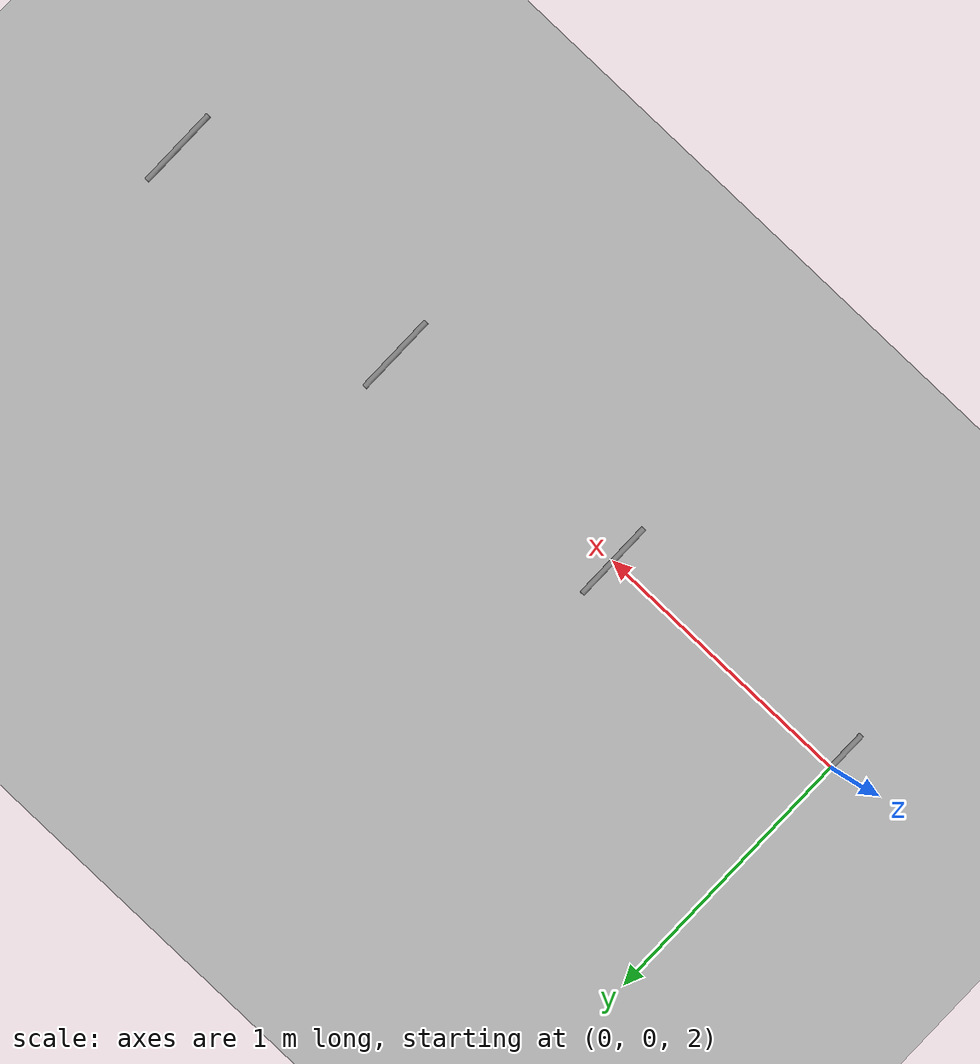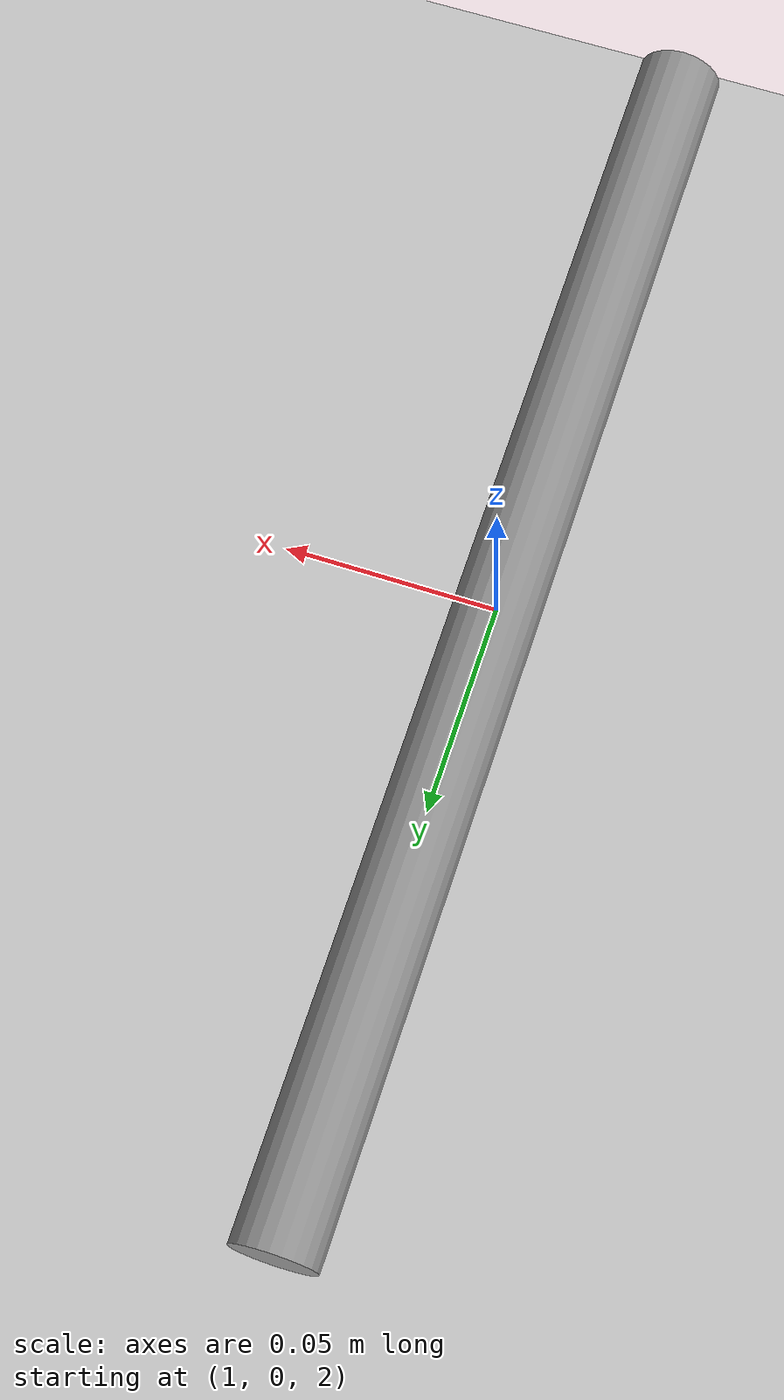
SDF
<?xml version='1.0'?>
<sdf version='1.7'>
  <world name="gibbon_world">
      <include>
        <uri>model://ground_plane</uri>
      </include>
      <include>
        <uri>model://sun</uri>
      </include>
    <model name='ladder'>
      <link name='link_0'>
        <inertial>
          <mass>1</mass>
          <inertia>
            <ixx>0.145833</ixx>
            <ixy>0</ixy>
            <ixz>0</ixz>
            <iyy>0.145833</iyy>
            <iyz>0</iyz>
            <izz>0.125</izz>
          </inertia>
        </inertial>
        <pose>0 0 2 1.57 -0 0</pose>
        <gravity>0</gravity>
        <self_collide>0</self_collide>
        <kinematic>0</kinematic>
        <enable_wind>0</enable_wind>
        <visual name='visual'>
          <geometry>
            <cylinder>
              <radius>0.01</radius>
              <length>0.3</length>
            </cylinder>
          </geometry>
          <material>
            <lighting>1</lighting>
            <script>
              <uri>file://media/materials/scripts/gazebo.material</uri>
              <name>Gazebo/Grey</name>
            </script>
            <shader type='pixel'>
              <normal_map>__default__</normal_map>
            </shader>
            <ambient>0.3 0.3 0.3 1</ambient>
            <diffuse>0.7 0.7 0.7 1</diffuse>
            <specular>0.01 0.01 0.01 1</specular>
            <emissive>0 0 0 1</emissive>
          </material>
          <transparency>0</transparency>
          <cast_shadows>1</cast_shadows>
        </visual>
        <collision name='collision'>
          <laser_retro>0</laser_retro>
          <max_contacts>10</max_contacts>
          <pose>0 0 0 0 -0 0</pose>
          <geometry>
            <cylinder>
              <radius>0.01</radius>
              <length>0.3</length>
            </cylinder>
          </geometry>
          <surface>
            <friction>
              <ode>
                <mu>0.001</mu>
                <mu2>0.001</mu2>
                <fdir1>0 0 0</fdir1>
                <slip1>0</slip1>
                <slip2>0</slip2>
              </ode>
              <torsional>
                <coefficient>1</coefficient>
                <patch_radius>0</patch_radius>
                <surface_radius>0</surface_radius>
                <use_patch_radius>1</use_patch_radius>
                <ode>
                  <slip>0</slip>
                </ode>
              </torsional>
            </friction>
            <bounce>
              <restitution_coefficient>0</restitution_coefficient>
              <threshold>1e+06</threshold>
            </bounce>
            <contact>
              <collide_without_contact>0</collide_without_contact>
              <collide_without_contact_bitmask>1</collide_without_contact_bitmask>
              <collide_bitmask>1</collide_bitmask>
              <ode>
                <soft_cfm>0</soft_cfm>
                <soft_erp>0.2</soft_erp>
                <kp>1e+13</kp>
                <kd>1</kd>
                <max_vel>0.01</max_vel>
                <min_depth>0</min_depth>
              </ode>
              <bullet>
                <split_impulse>1</split_impulse>
                <split_impulse_penetration_threshold>-0.01</split_impulse_penetration_threshold>
                <soft_cfm>0</soft_cfm>
                <soft_erp>0.2</soft_erp>
                <kp>1e+13</kp>
                <kd>1</kd>
              </bullet>
            </contact>
          </surface>
        </collision>
      </link>
      <link name='link_0_clone'>
        <inertial>
          <mass>1</mass>
          <inertia>
            <ixx>0.145833</ixx>
            <ixy>0</ixy>
            <ixz>0</ixz>
            <iyy>0.145833</iyy>
            <iyz>0</iyz>
            <izz>0.125</izz>
          </inertia>
        </inertial>
        <pose>1 0 2 1.57 -0 0</pose>
        <gravity>1</gravity>
        <self_collide>0</self_collide>
        <kinematic>0</kinematic>
        <enable_wind>0</enable_wind>
        <visual name='visual'>
          <geometry>
            <cylinder>
              <radius>0.01</radius>
              <length>0.3</length>
            </cylinder>
          </geometry>
          <material>
            <lighting>1</lighting>
            <script>
              <uri>file://media/materials/scripts/gazebo.material</uri>
              <name>Gazebo/Grey</name>
            </script>
            <shader type='pixel'>
              <normal_map>__default__</normal_map>
            </shader>
            <ambient>0.3 0.3 0.3 1</ambient>
            <diffuse>0.7 0.7 0.7 1</diffuse>
            <specular>0.01 0.01 0.01 1</specular>
            <emissive>0 0 0 1</emissive>
          </material>
          <transparency>0</transparency>
          <cast_shadows>1</cast_shadows>
        </visual>
        <collision name='collision'>
          <laser_retro>0</laser_retro>
          <max_contacts>10</max_contacts>
          <pose>0 0 0 0 -0 0</pose>
          <geometry>
            <cylinder>
              <radius>0.01</radius>
              <length>0.3</length>
            </cylinder>
          </geometry>
          <surface>
            <friction>
              <ode>
                <mu>0.001</mu>
                <mu2>0.001</mu2>
                <fdir1>0 0 0</fdir1>
                <slip1>0</slip1>
                <slip2>0</slip2>
              </ode>
              <torsional>
                <coefficient>1</coefficient>
                <patch_radius>0</patch_radius>
                <surface_radius>0</surface_radius>
                <use_patch_radius>1</use_patch_radius>
                <ode>
                  <slip>0</slip>
                </ode>
              </torsional>
            </friction>
            <bounce>
              <restitution_coefficient>0</restitution_coefficient>
              <threshold>1e+06</threshold>
            </bounce>
            <contact>
              <collide_without_contact>0</collide_without_contact>
              <collide_without_contact_bitmask>1</collide_without_contact_bitmask>
              <collide_bitmask>1</collide_bitmask>
              <ode>
                <soft_cfm>0</soft_cfm>
                <soft_erp>0.2</soft_erp>
                <kp>1e+13</kp>
                <kd>1</kd>
                <max_vel>0.01</max_vel>
                <min_depth>0</min_depth>
              </ode>
              <bullet>
                <split_impulse>1</split_impulse>
                <split_impulse_penetration_threshold>-0.01</split_impulse_penetration_threshold>
                <soft_cfm>0</soft_cfm>
                <soft_erp>0.2</soft_erp>
                <kp>1e+13</kp>
                <kd>1</kd>
              </bullet>
            </contact>
          </surface>
        </collision>
      </link>
      <link name='link_0_clone_clone'>
        <inertial>
          <mass>1</mass>
          <inertia>
            <ixx>0.145833</ixx>
            <ixy>0</ixy>
            <ixz>0</ixz>
            <iyy>0.145833</iyy>
            <iyz>0</iyz>
            <izz>0.125</izz>
          </inertia>
        </inertial>
        <pose>2 0 2 1.57 -0 0</pose>
        <gravity>1</gravity>
        <self_collide>0</self_collide>
        <kinematic>0</kinematic>
        <enable_wind>0</enable_wind>
        <visual name='visual'>
          <geometry>
            <cylinder>
              <radius>0.01</radius>
              <length>0.3</length>
            </cylinder>
          </geometry>
          <material>
            <lighting>1</lighting>
            <script>
              <uri>file://media/materials/scripts/gazebo.material</uri>
              <name>Gazebo/Grey</name>
            </script>
            <shader type='pixel'>
              <normal_map>__default__</normal_map>
            </shader>
            <ambient>0.3 0.3 0.3 1</ambient>
            <diffuse>0.7 0.7 0.7 1</diffuse>
            <specular>0.01 0.01 0.01 1</specular>
            <emissive>0 0 0 1</emissive>
          </material>
          <transparency>0</transparency>
          <cast_shadows>1</cast_shadows>
        </visual>
        <collision name='collision'>
          <laser_retro>0</laser_retro>
          <max_contacts>10</max_contacts>
          <pose>0 0 0 0 -0 0</pose>
          <geometry>
            <cylinder>
              <radius>0.01</radius>
              <length>0.3</length>
            </cylinder>
          </geometry>
          <surface>
            <friction>
              <ode>
                <mu>0.001</mu>
                <mu2>0.001</mu2>
                <fdir1>0 0 0</fdir1>
                <slip1>0</slip1>
                <slip2>0</slip2>
              </ode>
              <torsional>
                <coefficient>1</coefficient>
                <patch_radius>0</patch_radius>
                <surface_radius>0</surface_radius>
                <use_patch_radius>1</use_patch_radius>
                <ode>
                  <slip>0</slip>
                </ode>
              </torsional>
            </friction>
            <bounce>
              <restitution_coefficient>0</restitution_coefficient>
              <threshold>1e+06</threshold>
            </bounce>
            <contact>
              <collide_without_contact>0</collide_without_contact>
              <collide_without_contact_bitmask>1</collide_without_contact_bitmask>
              <collide_bitmask>1</collide_bitmask>
              <ode>
                <soft_cfm>0</soft_cfm>
                <soft_erp>0.2</soft_erp>
                <kp>1e+13</kp>
                <kd>1</kd>
                <max_vel>0.01</max_vel>
                <min_depth>0</min_depth>
              </ode>
              <bullet>
                <split_impulse>1</split_impulse>
                <split_impulse_penetration_threshold>-0.01</split_impulse_penetration_threshold>
                <soft_cfm>0</soft_cfm>
                <soft_erp>0.2</soft_erp>
                <kp>1e+13</kp>
                <kd>1</kd>
              </bullet>
            </contact>
          </surface>
        </collision>
      </link>
      <link name='link_0_clone_clone_0'>
        <inertial>
          <mass>1</mass>
          <inertia>
            <ixx>0.145833</ixx>
            <ixy>0</ixy>
            <ixz>0</ixz>
            <iyy>0.145833</iyy>
            <iyz>0</iyz>
            <izz>0.125</izz>
          </inertia>
        </inertial>
        <pose>3 0 2 1.57 -0 0</pose>
        <gravity>1</gravity>
        <self_collide>0</self_collide>
        <kinematic>0</kinematic>
        <enable_wind>0</enable_wind>
        <visual name='visual'>
          <geometry>
            <cylinder>
              <radius>0.01</radius>
              <length>0.3</length>
            </cylinder>
          </geometry>
          <material>
            <lighting>1</lighting>
            <script>
              <uri>file://media/materials/scripts/gazebo.material</uri>
              <name>Gazebo/Grey</name>
            </script>
            <shader type='pixel'>
              <normal_map>__default__</normal_map>
            </shader>
            <ambient>0.3 0.3 0.3 1</ambient>
            <diffuse>0.7 0.7 0.7 1</diffuse>
            <specular>0.01 0.01 0.01 1</specular>
            <emissive>0 0 0 1</emissive>
          </material>
          <transparency>0</transparency>
          <cast_shadows>1</cast_shadows>
        </visual>
        <collision name='collision'>
          <laser_retro>0</laser_retro>
          <max_contacts>10</max_contacts>
          <pose>0 0 0 0 -0 0</pose>
          <geometry>
            <cylinder>
              <radius>0.01</radius>
              <length>0.3</length>
            </cylinder>
          </geometry>
          <surface>
            <friction>
              <ode>
                <mu>0.001</mu>
                <mu2>0.001</mu2>
                <fdir1>0 0 0</fdir1>
                <slip1>0</slip1>
                <slip2>0</slip2>
              </ode>
              <torsional>
                <coefficient>1</coefficient>
                <patch_radius>0</patch_radius>
                <surface_radius>0</surface_radius>
                <use_patch_radius>1</use_patch_radius>
                <ode>
                  <slip>0</slip>
                </ode>
              </torsional>
            </friction>
            <bounce>
              <restitution_coefficient>0</restitution_coefficient>
              <threshold>1e+06</threshold>
            </bounce>
            <contact>
              <collide_without_contact>0</collide_without_contact>
              <collide_without_contact_bitmask>1</collide_without_contact_bitmask>
              <collide_bitmask>1</collide_bitmask>
              <ode>
                <soft_cfm>0</soft_cfm>
                <soft_erp>0.2</soft_erp>
                <kp>1e+13</kp>
                <kd>1</kd>
                <max_vel>0.01</max_vel>
                <min_depth>0</min_depth>
              </ode>
              <bullet>
                <split_impulse>1</split_impulse>
                <split_impulse_penetration_threshold>-0.01</split_impulse_penetration_threshold>
                <soft_cfm>0</soft_cfm>
                <soft_erp>0.2</soft_erp>
                <kp>1e+13</kp>
                <kd>1</kd>
              </bullet>
            </contact>
          </surface>
        </collision>
      </link>
      <static>1</static>
      <allow_auto_disable>1</allow_auto_disable>
    </model>
  </world>
</sdf>
